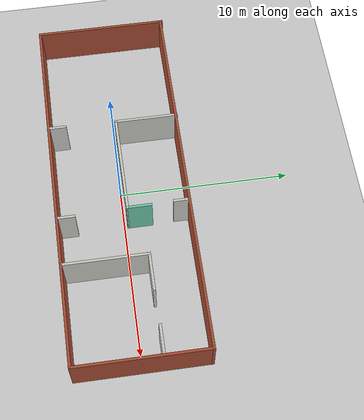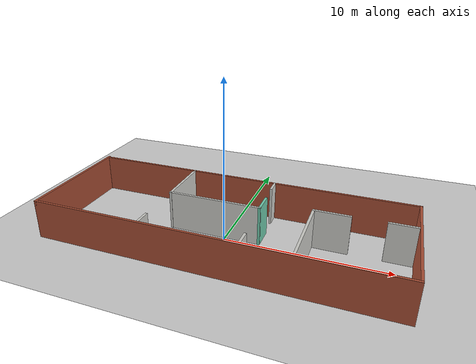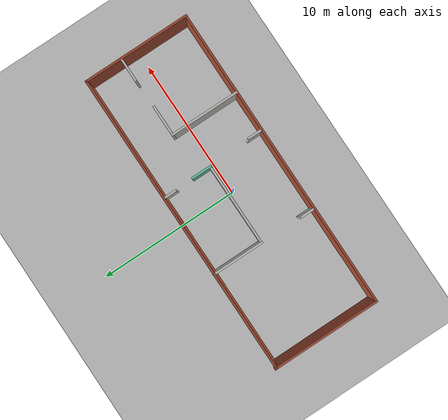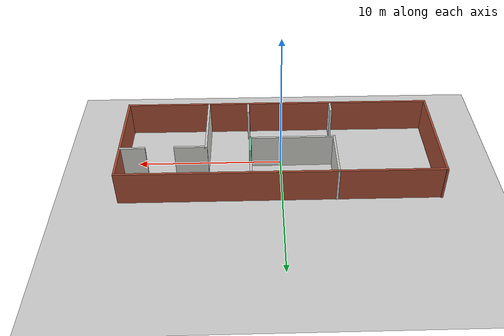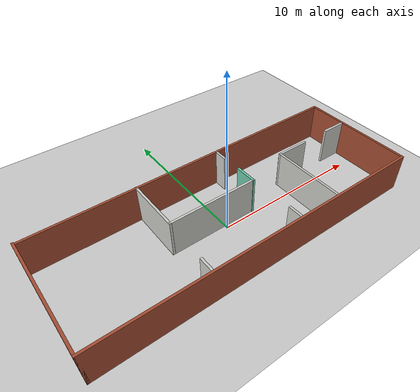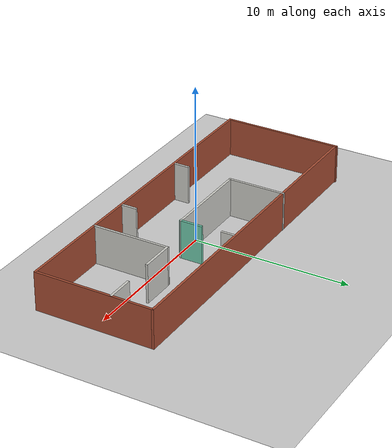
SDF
<sdf version="1.7">
 <world name="default">
  <light name="sun" type="directional">
   <pose>0 0 10 0 -0 0</pose>
   <diffuse>0.8 0.8 0.8 1</diffuse>
   <specular>0.2 0.2 0.2 1</specular>
   <attenuation>
    <range>1000</range>
    <constant>0.9</constant>
    <linear>0.01</linear>
    <quadratic>0.001</quadratic>
   </attenuation>
   <direction>-0.5 0.1 -0.9</direction>
   <spot><inner_angle>0</inner_angle><outer_angle>0</outer_angle><falloff>0</falloff></spot>
  </light>
  <model name="ground_plane">
   <static>1</static>
   <link name="link">
    <collision name="collision">
     <geometry><plane><normal>0 0 1</normal><size>100 100</size></plane></geometry>
     <surface>
      <contact><collide_bitmask>65535</collide_bitmask></contact>
      <friction><ode><mu>100</mu><mu2>50</mu2></ode></friction>
     </surface>
    </collision>
    <visual name="visual">
     <cast_shadows>0</cast_shadows>
     <geometry><plane><normal>0 0 1</normal><size>100 100</size></plane></geometry>
     <material>
      <script><uri>file://media/materials/scripts/gazebo.material</uri><name>Gazebo/Grey</name></script>
     </material>
    </visual>
   </link>
  </model>
  <gravity>0 0 -9.8</gravity>
  <magnetic_field>6e-06 2.3e-05 -4.2e-05</magnetic_field>
  <atmosphere type="adiabatic"/>
  <physics type="ode">
   <max_step_size>0.001</max_step_size>
   <real_time_factor>1</real_time_factor>
   <real_time_update_rate>1000</real_time_update_rate>
  </physics>
  <scene><ambient>0.4 0.4 0.4 1</ambient><background>0.7 0.7 0.7 1</background><shadows>1</shadows></scene>
  <spherical_coordinates>
   <surface_model>EARTH_WGS84</surface_model>
   <latitude_deg>0</latitude_deg>
   <longitude_deg>0</longitude_deg>
   <elevation>0</elevation>
   <heading_deg>0</heading_deg>
  </spherical_coordinates>
  <model name="house">
   <pose>0.113401 0.077775 0 0 -0 0</pose>
   <link name="Wall_12">
    <collision name="Wall_12_Collision">
     <geometry><box><size>3.75 0.15 2.5</size></box></geometry>
     <pose>0 0 1.25 0 -0 0</pose>
    </collision>
    <visual name="Wall_12_Visual">
     <pose>0 0 1.25 0 -0 0</pose>
     <geometry><box><size>3.75 0.15 2.5</size></box></geometry>
     <material>
      <script><uri>file://media/materials/scripts/gazebo.material</uri><name>Gazebo/CeilingTiled</name></script>
      <ambient>0.996078 0.47451 0.0196078 1</ambient>
     </material>
     <meta><layer>0</layer></meta>
    </visual>
    <pose>-3.7643 1.95985 0 0 -0 -1.5708</pose>
   </link>
   <link name="Wall_14">
    <collision name="Wall_14_Collision">
     <geometry><box><size>1 0.15 2.5</size></box></geometry>
     <pose>0 0 1.25 0 -0 0</pose>
    </collision>
    <visual name="Wall_14_Visual">
     <pose>0 0 1.25 0 -0 0</pose>
     <geometry><box><size>1 0.15 2.5</size></box></geometry>
     <material>
      <script><uri>file://media/materials/scripts/gazebo.material</uri><name>Gazebo/CeilingTiled</name></script>
      <ambient>0.996078 0.47451 0.0196078 1</ambient>
     </material>
     <meta><layer>0</layer></meta>
    </visual>
    <pose>-3.8172 -3.25455 0 0 -0 -1.5708</pose>
   </link>
   <link name="Wall_16">
    <collision name="Wall_16_Collision">
     <geometry><box><size>5.86509 0.15 2.5</size></box></geometry>
     <pose>0 0 1.25 0 -0 0</pose>
    </collision>
    <visual name="Wall_16_Visual">
     <pose>0 0 1.25 0 -0 0</pose>
     <geometry><box><size>5.86509 0.15 2.5</size></box></geometry>
     <material>
      <script><uri>file://media/materials/scripts/gazebo.material</uri><name>Gazebo/CeilingTiled</name></script>
      <ambient>0.435294 0.796078 0.67451 1</ambient>
     </material>
     <meta><layer>0</layer></meta>
    </visual>
    <pose>-0.849927 0.185089 0 0 -0 0.005322</pose>
   </link>
   <link name="Wall_17">
    <collision name="Wall_17_Collision">
     <geometry><box><size>1.5 0.15 2.5</size></box></geometry>
     <pose>0 0 1.25 0 -0 0</pose>
    </collision>
    <visual name="Wall_17_Visual">
     <pose>0 0 1.25 0 -0 0</pose>
     <geometry><box><size>1.5 0.15 2.5</size></box></geometry>
     <material>
      <script><uri>file://media/materials/scripts/gazebo.material</uri><name>Gazebo/Grey</name></script>
      <ambient>0.435294 0.796078 0.67451 1</ambient>
     </material>
     <meta><layer>0</layer></meta>
    </visual>
    <pose>2.00758 0.84488 0 0 -0 1.5708</pose>
   </link>
   <link name="Wall_20">
    <collision name="Wall_20_Collision">
     <geometry><box><size>1 0.15 2.5</size></box></geometry>
     <pose>0 0 1.25 0 -0 0</pose>
    </collision>
    <visual name="Wall_20_Visual">
     <pose>0 0 1.25 0 -0 0</pose>
     <geometry><box><size>1 0.15 2.5</size></box></geometry>
     <material>
      <script><uri>file://media/materials/scripts/gazebo.material</uri><name>Gazebo/CeilingTiled</name></script>
      <ambient>0.435294 0.796078 0.67451 1</ambient>
     </material>
     <meta><layer>0</layer></meta>
    </visual>
    <pose>2.13871 -3.25146 0 0 -0 1.5708</pose>
   </link>
   <link name="Wall_22">
    <collision name="Wall_22_Collision">
     <geometry><box><size>5 0.15 2.5</size></box></geometry>
     <pose>0 0 1.25 0 -0 0</pose>
    </collision>
    <visual name="Wall_22_Visual">
     <pose>0 0 1.25 0 -0 0</pose>
     <geometry><box><size>5 0.15 2.5</size></box></geometry>
     <material>
      <script><uri>file://media/materials/scripts/gazebo.material</uri><name>Gazebo/CeilingTiled</name></script>
      <ambient>0.435294 0.796078 0.67451 1</ambient>
     </material>
     <meta><layer>0</layer></meta>
    </visual>
    <pose>4.98989 -1.35918 0 0 -0 1.5708</pose>
   </link>
   <link name="Wall_23">
    <collision name="Wall_23_Collision">
     <geometry><box><size>2.25 0.15 2.5</size></box></geometry>
     <pose>0 0 1.25 0 -0 0</pose>
    </collision>
    <visual name="Wall_23_Visual">
     <pose>0 0 1.25 0 -0 0</pose>
     <geometry><box><size>2.25 0.15 2.5</size></box></geometry>
     <material>
      <script><uri>file://media/materials/scripts/gazebo.material</uri><name>Gazebo/CeilingTiled</name></script>
      <ambient>0.435294 0.796078 0.67451 1</ambient>
     </material>
     <meta><layer>0</layer></meta>
    </visual>
    <pose>6.03988 1.06582 0 0 -0 0</pose>
   </link>
   <link name="Wall_25">
    <collision name="Wall_25_Collision">
     <geometry><box><size>1.75 0.15 2.5</size></box></geometry>
     <pose>0 0 1.25 0 -0 0</pose>
    </collision>
    <visual name="Wall_25_Visual">
     <pose>0 0 1.25 0 -0 0</pose>
     <geometry><box><size>1.75 0.15 2.5</size></box></geometry>
     <material>
      <script><uri>file://media/materials/scripts/gazebo.material</uri><name>Gazebo/CeilingTiled</name></script>
      <ambient>0.435294 0.796078 0.67451 1</ambient>
     </material>
     <meta><layer>0</layer></meta>
    </visual>
    <pose>9.95708 1.11304 0 0 -0 0</pose>
   </link>
   <link name="Wall_27">
    <collision name="Wall_27_Collision">
     <geometry><box><size>1 0.15 2.5</size></box></geometry>
     <pose>0 0 1.25 0 -0 0</pose>
    </collision>
    <visual name="Wall_27_Visual">
     <pose>0 0 1.25 0 -0 0</pose>
     <geometry><box><size>1 0.15 2.5</size></box></geometry>
     <material>
      <script><uri>file://media/materials/scripts/gazebo.material</uri><name>Gazebo/CeilingTiled</name></script>
      <ambient>0.435294 0.796078 0.67451 1</ambient>
     </material>
     <meta><layer>0</layer></meta>
    </visual>
    <pose>1.94813 3.30395 0 0 -0 -1.5708</pose>
   </link>
   <link name="Wall_6">
    <collision name="Wall_6_Collision">
     <geometry><box><size>7.75 0.15 2.5</size></box></geometry>
     <pose>0 0 1.25 0 -0 0</pose>
    </collision>
    <visual name="Wall_6_Visual">
     <pose>0 0 1.25 0 -0 0</pose>
     <geometry><box><size>7.75 0.15 2.5</size></box></geometry>
     <material>
      <script><uri>file://media/materials/scripts/gazebo.material</uri><name>Gazebo/Bricks</name></script>
      <ambient>1 1 1 1</ambient>
     </material>
     <meta><layer>0</layer></meta>
    </visual>
    <pose>-10.8 0 0 0 -0 -1.5708</pose>
   </link>
   <link name="Wall_7">
    <collision name="Wall_7_Collision">
     <geometry><box><size>21.75 0.15 2.5</size></box></geometry>
     <pose>0 0 1.25 0 -0 0</pose>
    </collision>
    <visual name="Wall_7_Visual">
     <pose>0 0 1.25 0 -0 0</pose>
     <geometry><box><size>21.75 0.15 2.5</size></box></geometry>
     <material>
      <script><uri>file://media/materials/scripts/gazebo.material</uri><name>Gazebo/Bricks</name></script>
      <ambient>1 1 1 1</ambient>
     </material>
     <meta><layer>0</layer></meta>
    </visual>
    <pose>0 -3.8 0 0 -0 0</pose>
   </link>
   <link name="Wall_8">
    <collision name="Wall_8_Collision">
     <geometry><box><size>7.65407 0.15 2.5</size></box></geometry>
     <pose>0 0 1.25 0 -0 0</pose>
    </collision>
    <visual name="Wall_8_Visual">
     <pose>0 0 1.25 0 -0 0</pose>
     <geometry><box><size>7.65407 0.15 2.5</size></box></geometry>
     <material>
      <script><uri>file://media/materials/scripts/gazebo.material</uri><name>Gazebo/Bricks</name></script>
      <ambient>1 1 1 1</ambient>
     </material>
     <meta><layer>0</layer></meta>
    </visual>
    <pose>10.8 -0.047962 0 0 -0 1.5708</pose>
   </link>
   <link name="Wall_9">
    <collision name="Wall_9_Collision">
     <geometry><box><size>21.75 0.15 2.5</size></box></geometry>
     <pose>0 0 1.25 0 -0 0</pose>
    </collision>
    <visual name="Wall_9_Visual">
     <pose>0 0 1.25 0 -0 0</pose>
     <geometry><box><size>21.75 0.15 2.5</size></box></geometry>
     <material>
      <script><uri>file://media/materials/scripts/gazebo.material</uri><name>Gazebo/Bricks</name></script>
      <ambient>1 1 1 1</ambient>
     </material>
     <meta><layer>0</layer></meta>
    </visual>
    <pose>0 3.73449 0 0 -0 3.14159</pose>
   </link>
   <static>1</static>
  </model>
 </world>
</sdf>
